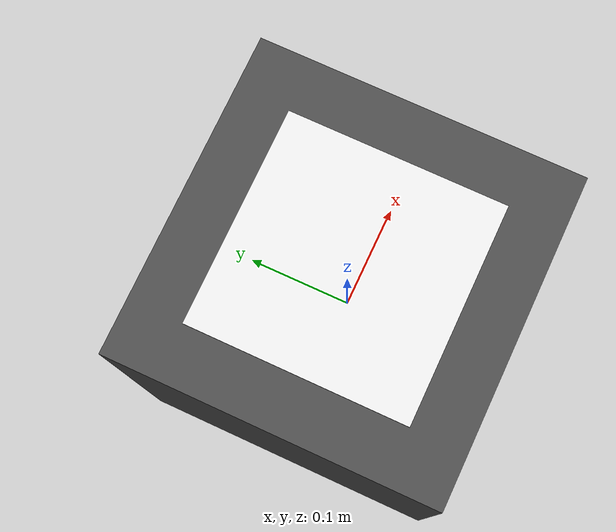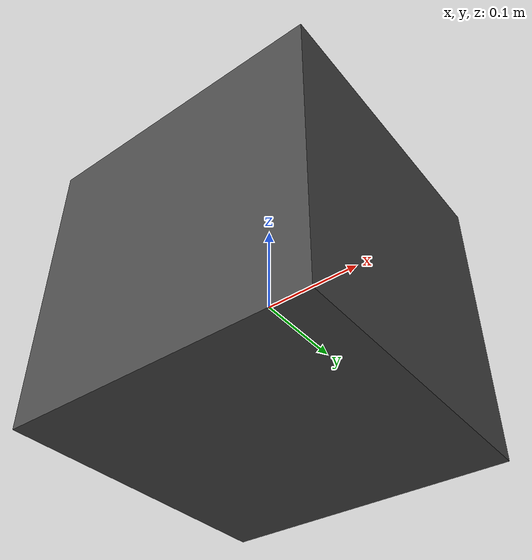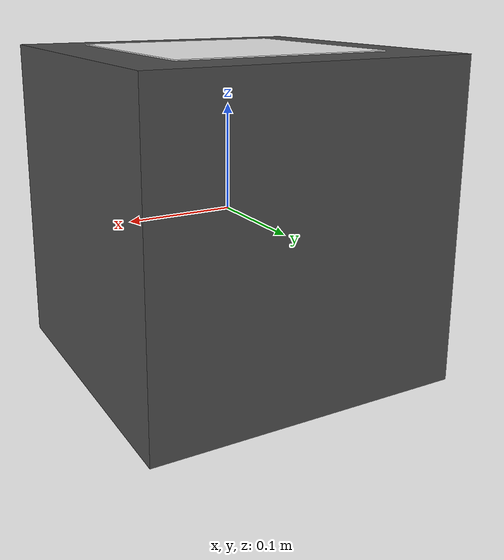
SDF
<?xml version="1.0"?>
<sdf version="1.4">
  <model name="package_box">
    <static>false</static>
    <link name="link">
      <inertial>
        <mass>0.5</mass>
        <inertia>
          <ixx>0.00208</ixx>
          <ixy>0</ixy>
          <ixz>0</ixz>
          <iyy>0.00208</iyy>
          <iyz>0</iyz>
          <izz>0.00208</izz>
        </inertia>
      </inertial>

      <collision name="collision">
        <geometry>
          <box>
            <size>0.3 0.3 0.3</size>
          </box>
        </geometry>
      </collision>

      <visual name="visual">
        <geometry>
          <box>
            <size>0.3 0.3 0.3</size>
          </box>
        </geometry>
        <material>
          <script>
            <name>Gazebo/DarkGrey</name>
          </script>
        </material>
      </visual>

      <!-- Barcode on top -->
      <visual name="barcode">
        <pose>0 0 0.151 0 0 0</pose>
        <geometry>
          <box>
            <size>0.2 0.2 0.001</size>
          </box>
        </geometry>
        <material>
          <script>
            <name>Gazebo/White</name>
          </script>
        </material>
      </visual>
    </link>
  </model>
</sdf>
